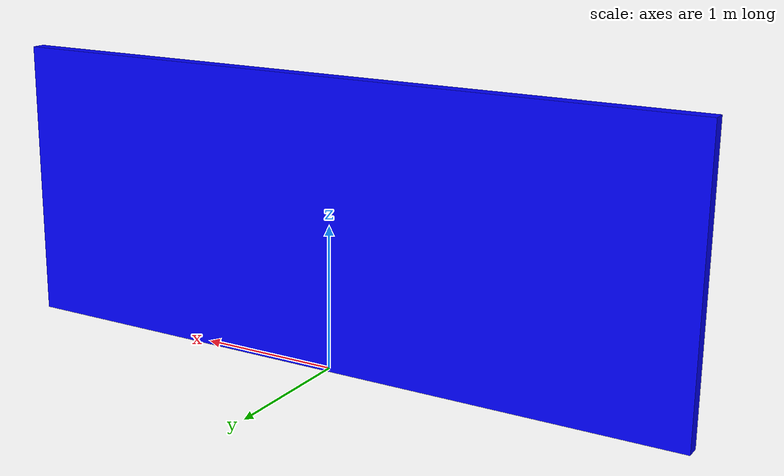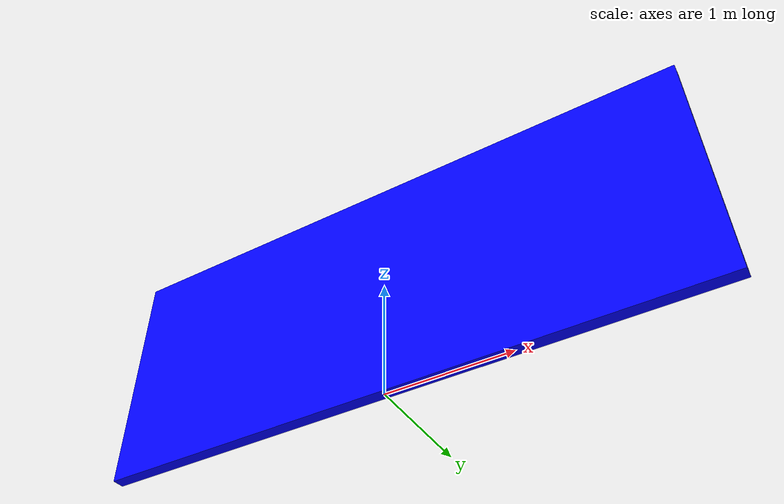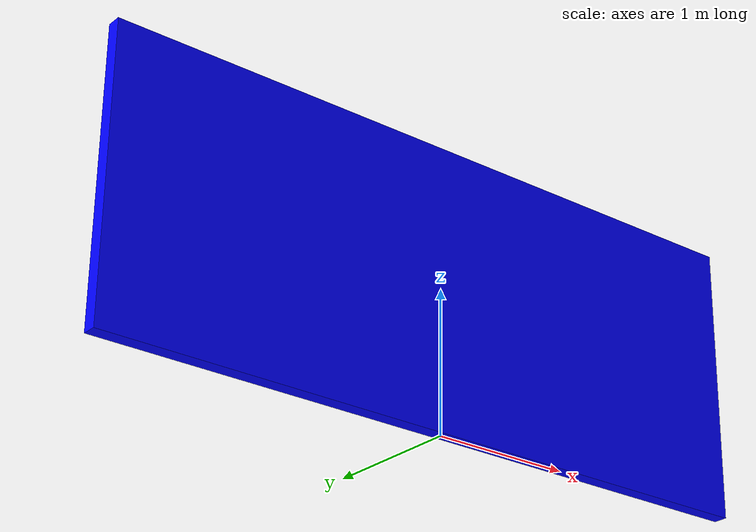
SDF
<?xml version="1.0"?>
<sdf version='1.8'>
  <model name='room_wall_2x5m'>
    <link name="link">
      <pose>0 0 1 0 0 1.570796326795</pose>
      <visual name="visual">
        <geometry>
          <box>
            <size>0.1 5.0 2</size>
          </box>
        </geometry>
        <material>
          <ambient>0.0 0.0 1.0 1</ambient>
          <diffuse>0.0 0.0 1.0 1</diffuse>
          <specular>0.0 0.0 1.0 1</specular>
        </material>
      </visual>
      <collision name ="collision">
        <geometry>
           <box>
            <size>0.1 5.0 2</size>
          </box>
        </geometry>
      </collision>
    </link>
    <static>1</static>
    <allow_auto_disable>1</allow_auto_disable>
  </model>
</sdf>
